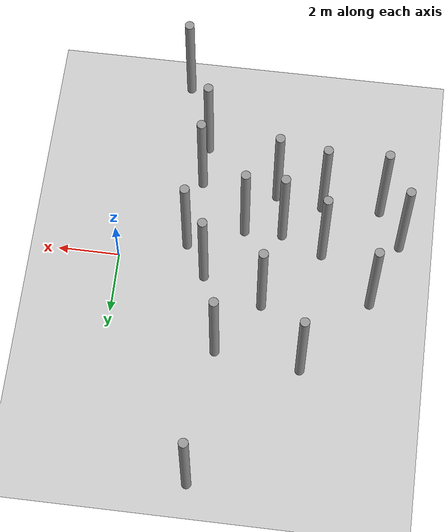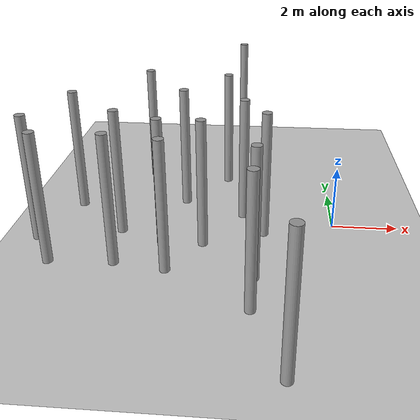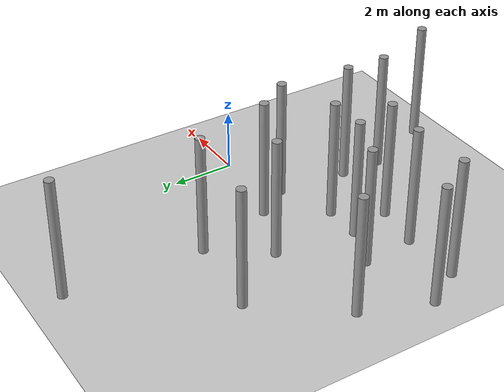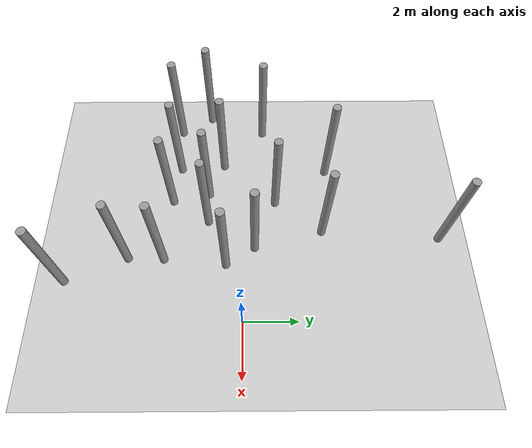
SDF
<sdf version="1.6">
 <world name="default">
  <model name="ground_plane">
   <static>1</static>
   <link name="link">
    <collision name="collision">
     <geometry><plane><normal>0 0 1</normal><size>100 100</size></plane></geometry>
     <surface><friction><ode><mu>100</mu><mu2>50</mu2></ode></friction></surface>
    </collision>
    <visual name="visual">
     <cast_shadows>0</cast_shadows>
     <geometry><plane><normal>0 0 1</normal><size>100 100</size></plane></geometry>
     <material>
      <script><uri>file://media/materials/scripts/gazebo.material</uri><name>Gazebo/Grey</name></script>
     </material>
    </visual>
   </link>
  </model>
  <model name="unit_cylinder">
   <link name="link">
    <inertial>
     <mass>1000</mass>
     <inertia><ixx>145.833</ixx><ixy>0</ixy><ixz>0</ixz><iyy>145.833</iyy><iyz>0</iyz><izz>125</izz></inertia>
    </inertial>
    <visual name="visual">
     <geometry><cylinder><radius>0.15</radius><length>4</length></cylinder></geometry>
     <material>
      <script><name>Gazebo/Grey</name><uri>file://media/materials/scripts/gazebo.material</uri></script>
      <shader type="pixel"><normal_map>__default__</normal_map></shader>
      <ambient>0.3 0.3 0.3 1</ambient>
      <diffuse>0.7 0.7 0.7 1</diffuse>
      <specular>0.01 0.01 0.01 1</specular>
      <emissive>0 0 0 1</emissive>
     </material>
    </visual>
    <collision name="collision">
     <geometry><cylinder><radius>0.15</radius><length>4</length></cylinder></geometry>
     <surface>
      <friction>
       <ode><mu>1</mu><mu2>1</mu2><fdir1>0 0 0</fdir1><slip1>0</slip1><slip2>0</slip2></ode>
       <torsional>
        <coefficient>1</coefficient>
        <patch_radius>0</patch_radius>
        <surface_radius>0</surface_radius>
        <use_patch_radius>1</use_patch_radius>
        <ode><slip>0</slip></ode>
       </torsional>
      </friction>
      <bounce><restitution_coefficient>0</restitution_coefficient><threshold>1e+06</threshold></bounce>
      <contact>
       <collide_without_contact>0</collide_without_contact>
       <collide_without_contact_bitmask>1</collide_without_contact_bitmask>
       <collide_bitmask>1</collide_bitmask>
       <ode>
        <soft_cfm>0</soft_cfm>
        <soft_erp>0.2</soft_erp>
        <kp>1e+13</kp>
        <kd>1</kd>
        <max_vel>0.01</max_vel>
        <min_depth>0</min_depth>
       </ode>
       <bullet>
        <split_impulse>1</split_impulse>
        <split_impulse_penetration_threshold>-0.01</split_impulse_penetration_threshold>
        <soft_cfm>0</soft_cfm>
        <soft_erp>0.2</soft_erp>
        <kp>1e+13</kp>
        <kd>1</kd>
       </bullet>
      </contact>
     </surface>
    </collision>
   </link>
   <static>0</static>
   <pose>-2.17183 -0.620816 1.99999 0 -0 0.001339</pose>
  </model>
  <model name="unit_cylinder_clone_4">
   <link name="link">
    <inertial>
     <mass>1000</mass>
     <inertia><ixx>145.833</ixx><ixy>0</ixy><ixz>0</ixz><iyy>145.833</iyy><iyz>0</iyz><izz>125</izz></inertia>
    </inertial>
    <visual name="visual">
     <geometry><cylinder><radius>0.15</radius><length>4</length></cylinder></geometry>
     <material>
      <script><name>Gazebo/Grey</name><uri>file://media/materials/scripts/gazebo.material</uri></script>
      <shader type="pixel"><normal_map>__default__</normal_map></shader>
      <ambient>0.3 0.3 0.3 1</ambient>
      <diffuse>0.7 0.7 0.7 1</diffuse>
      <specular>0.01 0.01 0.01 1</specular>
      <emissive>0 0 0 1</emissive>
     </material>
    </visual>
    <collision name="collision">
     <geometry><cylinder><radius>0.15</radius><length>4</length></cylinder></geometry>
     <surface>
      <friction>
       <ode><mu>1</mu><mu2>1</mu2><fdir1>0 0 0</fdir1><slip1>0</slip1><slip2>0</slip2></ode>
       <torsional>
        <coefficient>1</coefficient>
        <patch_radius>0</patch_radius>
        <surface_radius>0</surface_radius>
        <use_patch_radius>1</use_patch_radius>
        <ode><slip>0</slip></ode>
       </torsional>
      </friction>
      <bounce><restitution_coefficient>0</restitution_coefficient><threshold>1e+06</threshold></bounce>
      <contact>
       <collide_without_contact>0</collide_without_contact>
       <collide_without_contact_bitmask>1</collide_without_contact_bitmask>
       <collide_bitmask>1</collide_bitmask>
       <ode>
        <soft_cfm>0</soft_cfm>
        <soft_erp>0.2</soft_erp>
        <kp>1e+13</kp>
        <kd>1</kd>
        <max_vel>0.01</max_vel>
        <min_depth>0</min_depth>
       </ode>
       <bullet>
        <split_impulse>1</split_impulse>
        <split_impulse_penetration_threshold>-0.01</split_impulse_penetration_threshold>
        <soft_cfm>0</soft_cfm>
        <soft_erp>0.2</soft_erp>
        <kp>1e+13</kp>
        <kd>1</kd>
       </bullet>
      </contact>
     </surface>
    </collision>
   </link>
   <static>0</static>
   <pose>-3.98103 -1.32852 1.99999 0 -0 0.001494</pose>
  </model>
  <model name="unit_cylinder_clone_5">
   <link name="link">
    <inertial>
     <mass>1000</mass>
     <inertia><ixx>145.833</ixx><ixy>0</ixy><ixz>0</ixz><iyy>145.833</iyy><iyz>0</iyz><izz>125</izz></inertia>
    </inertial>
    <visual name="visual">
     <geometry><cylinder><radius>0.15</radius><length>4</length></cylinder></geometry>
     <material>
      <script><name>Gazebo/Grey</name><uri>file://media/materials/scripts/gazebo.material</uri></script>
      <shader type="pixel"><normal_map>__default__</normal_map></shader>
      <ambient>0.3 0.3 0.3 1</ambient>
      <diffuse>0.7 0.7 0.7 1</diffuse>
      <specular>0.01 0.01 0.01 1</specular>
      <emissive>0 0 0 1</emissive>
     </material>
    </visual>
    <collision name="collision">
     <geometry><cylinder><radius>0.15</radius><length>4</length></cylinder></geometry>
     <surface>
      <friction>
       <ode><mu>1</mu><mu2>1</mu2><fdir1>0 0 0</fdir1><slip1>0</slip1><slip2>0</slip2></ode>
       <torsional>
        <coefficient>1</coefficient>
        <patch_radius>0</patch_radius>
        <surface_radius>0</surface_radius>
        <use_patch_radius>1</use_patch_radius>
        <ode><slip>0</slip></ode>
       </torsional>
      </friction>
      <bounce><restitution_coefficient>0</restitution_coefficient><threshold>1e+06</threshold></bounce>
      <contact>
       <collide_without_contact>0</collide_without_contact>
       <collide_without_contact_bitmask>1</collide_without_contact_bitmask>
       <collide_bitmask>1</collide_bitmask>
       <ode>
        <soft_cfm>0</soft_cfm>
        <soft_erp>0.2</soft_erp>
        <kp>1e+13</kp>
        <kd>1</kd>
        <max_vel>0.01</max_vel>
        <min_depth>0</min_depth>
       </ode>
       <bullet>
        <split_impulse>1</split_impulse>
        <split_impulse_penetration_threshold>-0.01</split_impulse_penetration_threshold>
        <soft_cfm>0</soft_cfm>
        <soft_erp>0.2</soft_erp>
        <kp>1e+13</kp>
        <kd>1</kd>
       </bullet>
      </contact>
     </surface>
    </collision>
   </link>
   <static>0</static>
   <pose>-4.8156 1.25333 2 0 -0 0.00141</pose>
  </model>
  <model name="unit_cylinder_clone_6">
   <link name="link">
    <inertial>
     <mass>1000</mass>
     <inertia><ixx>145.833</ixx><ixy>0</ixy><ixz>0</ixz><iyy>145.833</iyy><iyz>0</iyz><izz>125</izz></inertia>
    </inertial>
    <visual name="visual">
     <geometry><cylinder><radius>0.15</radius><length>4</length></cylinder></geometry>
     <material>
      <script><name>Gazebo/Grey</name><uri>file://media/materials/scripts/gazebo.material</uri></script>
      <shader type="pixel"><normal_map>__default__</normal_map></shader>
      <ambient>0.3 0.3 0.3 1</ambient>
      <diffuse>0.7 0.7 0.7 1</diffuse>
      <specular>0.01 0.01 0.01 1</specular>
      <emissive>0 0 0 1</emissive>
     </material>
    </visual>
    <collision name="collision">
     <geometry><cylinder><radius>0.15</radius><length>4</length></cylinder></geometry>
     <surface>
      <friction>
       <ode><mu>1</mu><mu2>1</mu2><fdir1>0 0 0</fdir1><slip1>0</slip1><slip2>0</slip2></ode>
       <torsional>
        <coefficient>1</coefficient>
        <patch_radius>0</patch_radius>
        <surface_radius>0</surface_radius>
        <use_patch_radius>1</use_patch_radius>
        <ode><slip>0</slip></ode>
       </torsional>
      </friction>
      <bounce><restitution_coefficient>0</restitution_coefficient><threshold>1e+06</threshold></bounce>
      <contact>
       <collide_without_contact>0</collide_without_contact>
       <collide_without_contact_bitmask>1</collide_without_contact_bitmask>
       <collide_bitmask>1</collide_bitmask>
       <ode>
        <soft_cfm>0</soft_cfm>
        <soft_erp>0.2</soft_erp>
        <kp>1e+13</kp>
        <kd>1</kd>
        <max_vel>0.01</max_vel>
        <min_depth>0</min_depth>
       </ode>
       <bullet>
        <split_impulse>1</split_impulse>
        <split_impulse_penetration_threshold>-0.01</split_impulse_penetration_threshold>
        <soft_cfm>0</soft_cfm>
        <soft_erp>0.2</soft_erp>
        <kp>1e+13</kp>
        <kd>1</kd>
       </bullet>
      </contact>
     </surface>
    </collision>
   </link>
   <static>0</static>
   <pose>-3.52334 3.00007 1.99999 0 -0 0.001273</pose>
  </model>
  <model name="unit_cylinder_clone_7">
   <link name="link">
    <inertial>
     <mass>1000</mass>
     <inertia><ixx>145.833</ixx><ixy>0</ixy><ixz>0</ixz><iyy>145.833</iyy><iyz>0</iyz><izz>125</izz></inertia>
    </inertial>
    <visual name="visual">
     <geometry><cylinder><radius>0.15</radius><length>4</length></cylinder></geometry>
     <material>
      <script><name>Gazebo/Grey</name><uri>file://media/materials/scripts/gazebo.material</uri></script>
      <shader type="pixel"><normal_map>__default__</normal_map></shader>
      <ambient>0.3 0.3 0.3 1</ambient>
      <diffuse>0.7 0.7 0.7 1</diffuse>
      <specular>0.01 0.01 0.01 1</specular>
      <emissive>0 0 0 1</emissive>
     </material>
    </visual>
    <collision name="collision">
     <geometry><cylinder><radius>0.15</radius><length>4</length></cylinder></geometry>
     <surface>
      <friction>
       <ode><mu>1</mu><mu2>1</mu2><fdir1>0 0 0</fdir1><slip1>0</slip1><slip2>0</slip2></ode>
       <torsional>
        <coefficient>1</coefficient>
        <patch_radius>0</patch_radius>
        <surface_radius>0</surface_radius>
        <use_patch_radius>1</use_patch_radius>
        <ode><slip>0</slip></ode>
       </torsional>
      </friction>
      <bounce><restitution_coefficient>0</restitution_coefficient><threshold>1e+06</threshold></bounce>
      <contact>
       <collide_without_contact>0</collide_without_contact>
       <collide_without_contact_bitmask>1</collide_without_contact_bitmask>
       <collide_bitmask>1</collide_bitmask>
       <ode>
        <soft_cfm>0</soft_cfm>
        <soft_erp>0.2</soft_erp>
        <kp>1e+13</kp>
        <kd>1</kd>
        <max_vel>0.01</max_vel>
        <min_depth>0</min_depth>
       </ode>
       <bullet>
        <split_impulse>1</split_impulse>
        <split_impulse_penetration_threshold>-0.01</split_impulse_penetration_threshold>
        <soft_cfm>0</soft_cfm>
        <soft_erp>0.2</soft_erp>
        <kp>1e+13</kp>
        <kd>1</kd>
       </bullet>
      </contact>
     </surface>
    </collision>
   </link>
   <static>0</static>
   <pose>-2.40002 -2.93198 1.99999 0 -0 0.001374</pose>
  </model>
  <model name="unit_cylinder_clone_8">
   <link name="link">
    <inertial>
     <mass>1000</mass>
     <inertia><ixx>145.833</ixx><ixy>0</ixy><ixz>0</ixz><iyy>145.833</iyy><iyz>0</iyz><izz>125</izz></inertia>
    </inertial>
    <visual name="visual">
     <geometry><cylinder><radius>0.15</radius><length>4</length></cylinder></geometry>
     <material>
      <script><name>Gazebo/Grey</name><uri>file://media/materials/scripts/gazebo.material</uri></script>
      <shader type="pixel"><normal_map>__default__</normal_map></shader>
      <ambient>0.3 0.3 0.3 1</ambient>
      <diffuse>0.7 0.7 0.7 1</diffuse>
      <specular>0.01 0.01 0.01 1</specular>
      <emissive>0 0 0 1</emissive>
     </material>
    </visual>
    <collision name="collision">
     <geometry><cylinder><radius>0.15</radius><length>4</length></cylinder></geometry>
     <surface>
      <friction>
       <ode><mu>1</mu><mu2>1</mu2><fdir1>0 0 0</fdir1><slip1>0</slip1><slip2>0</slip2></ode>
       <torsional>
        <coefficient>1</coefficient>
        <patch_radius>0</patch_radius>
        <surface_radius>0</surface_radius>
        <use_patch_radius>1</use_patch_radius>
        <ode><slip>0</slip></ode>
       </torsional>
      </friction>
      <bounce><restitution_coefficient>0</restitution_coefficient><threshold>1e+06</threshold></bounce>
      <contact>
       <collide_without_contact>0</collide_without_contact>
       <collide_without_contact_bitmask>1</collide_without_contact_bitmask>
       <collide_bitmask>1</collide_bitmask>
       <ode>
        <soft_cfm>0</soft_cfm>
        <soft_erp>0.2</soft_erp>
        <kp>1e+13</kp>
        <kd>1</kd>
        <max_vel>0.01</max_vel>
        <min_depth>0</min_depth>
       </ode>
       <bullet>
        <split_impulse>1</split_impulse>
        <split_impulse_penetration_threshold>-0.01</split_impulse_penetration_threshold>
        <soft_cfm>0</soft_cfm>
        <soft_erp>0.2</soft_erp>
        <kp>1e+13</kp>
        <kd>1</kd>
       </bullet>
      </contact>
     </surface>
    </collision>
   </link>
   <static>0</static>
   <pose>-2.8562 0.444327 1.99999 0 -0 0.001326</pose>
  </model>
  <model name="unit_cylinder_clone_10">
   <link name="link">
    <inertial>
     <mass>1000</mass>
     <inertia><ixx>145.833</ixx><ixy>0</ixy><ixz>0</ixz><iyy>145.833</iyy><iyz>0</iyz><izz>125</izz></inertia>
    </inertial>
    <visual name="visual">
     <geometry><cylinder><radius>0.15</radius><length>4</length></cylinder></geometry>
     <material>
      <script><name>Gazebo/Grey</name><uri>file://media/materials/scripts/gazebo.material</uri></script>
      <shader type="pixel"><normal_map>__default__</normal_map></shader>
      <ambient>0.3 0.3 0.3 1</ambient>
      <diffuse>0.7 0.7 0.7 1</diffuse>
      <specular>0.01 0.01 0.01 1</specular>
      <emissive>0 0 0 1</emissive>
     </material>
    </visual>
    <collision name="collision">
     <geometry><cylinder><radius>0.15</radius><length>4</length></cylinder></geometry>
     <surface>
      <friction>
       <ode><mu>1</mu><mu2>1</mu2><fdir1>0 0 0</fdir1><slip1>0</slip1><slip2>0</slip2></ode>
       <torsional>
        <coefficient>1</coefficient>
        <patch_radius>0</patch_radius>
        <surface_radius>0</surface_radius>
        <use_patch_radius>1</use_patch_radius>
        <ode><slip>0</slip></ode>
       </torsional>
      </friction>
      <bounce><restitution_coefficient>0</restitution_coefficient><threshold>1e+06</threshold></bounce>
      <contact>
       <collide_without_contact>0</collide_without_contact>
       <collide_without_contact_bitmask>1</collide_without_contact_bitmask>
       <collide_bitmask>1</collide_bitmask>
       <ode>
        <soft_cfm>0</soft_cfm>
        <soft_erp>0.2</soft_erp>
        <kp>1e+13</kp>
        <kd>1</kd>
        <max_vel>0.01</max_vel>
        <min_depth>0</min_depth>
       </ode>
       <bullet>
        <split_impulse>1</split_impulse>
        <split_impulse_penetration_threshold>-0.01</split_impulse_penetration_threshold>
        <soft_cfm>0</soft_cfm>
        <soft_erp>0.2</soft_erp>
        <kp>1e+13</kp>
        <kd>1</kd>
       </bullet>
      </contact>
     </surface>
    </collision>
   </link>
   <static>0</static>
   <pose>-6.4237 -2.50135 1.99999 0 -0 0.001436</pose>
  </model>
  <model name="unit_cylinder_clone_11">
   <link name="link">
    <inertial>
     <mass>1000</mass>
     <inertia><ixx>145.833</ixx><ixy>0</ixy><ixz>0</ixz><iyy>145.833</iyy><iyz>0</iyz><izz>125</izz></inertia>
    </inertial>
    <visual name="visual">
     <geometry><cylinder><radius>0.15</radius><length>4</length></cylinder></geometry>
     <material>
      <script><name>Gazebo/Grey</name><uri>file://media/materials/scripts/gazebo.material</uri></script>
      <shader type="pixel"><normal_map>__default__</normal_map></shader>
      <ambient>0.3 0.3 0.3 1</ambient>
      <diffuse>0.7 0.7 0.7 1</diffuse>
      <specular>0.01 0.01 0.01 1</specular>
      <emissive>0 0 0 1</emissive>
     </material>
    </visual>
    <collision name="collision">
     <geometry><cylinder><radius>0.15</radius><length>4</length></cylinder></geometry>
     <surface>
      <friction>
       <ode><mu>1</mu><mu2>1</mu2><fdir1>0 0 0</fdir1><slip1>0</slip1><slip2>0</slip2></ode>
       <torsional>
        <coefficient>1</coefficient>
        <patch_radius>0</patch_radius>
        <surface_radius>0</surface_radius>
        <use_patch_radius>1</use_patch_radius>
        <ode><slip>0</slip></ode>
       </torsional>
      </friction>
      <bounce><restitution_coefficient>0</restitution_coefficient><threshold>1e+06</threshold></bounce>
      <contact>
       <collide_without_contact>0</collide_without_contact>
       <collide_without_contact_bitmask>1</collide_without_contact_bitmask>
       <collide_bitmask>1</collide_bitmask>
       <ode>
        <soft_cfm>0</soft_cfm>
        <soft_erp>0.2</soft_erp>
        <kp>1e+13</kp>
        <kd>1</kd>
        <max_vel>0.01</max_vel>
        <min_depth>0</min_depth>
       </ode>
       <bullet>
        <split_impulse>1</split_impulse>
        <split_impulse_penetration_threshold>-0.01</split_impulse_penetration_threshold>
        <soft_cfm>0</soft_cfm>
        <soft_erp>0.2</soft_erp>
        <kp>1e+13</kp>
        <kd>1</kd>
       </bullet>
      </contact>
     </surface>
    </collision>
   </link>
   <static>0</static>
   <pose>-4.89766 -2.73779 1.99999 0 -0 0.001436</pose>
  </model>
  <model name="unit_cylinder_clone_13">
   <link name="link">
    <inertial>
     <mass>1000</mass>
     <inertia><ixx>145.833</ixx><ixy>0</ixy><ixz>0</ixz><iyy>145.833</iyy><iyz>0</iyz><izz>125</izz></inertia>
    </inertial>
    <visual name="visual">
     <geometry><cylinder><radius>0.15</radius><length>4</length></cylinder></geometry>
     <material>
      <script><name>Gazebo/Grey</name><uri>file://media/materials/scripts/gazebo.material</uri></script>
      <shader type="pixel"><normal_map>__default__</normal_map></shader>
      <ambient>0.3 0.3 0.3 1</ambient>
      <diffuse>0.7 0.7 0.7 1</diffuse>
      <specular>0.01 0.01 0.01 1</specular>
      <emissive>0 0 0 1</emissive>
     </material>
    </visual>
    <collision name="collision">
     <geometry><cylinder><radius>0.15</radius><length>4</length></cylinder></geometry>
     <surface>
      <friction>
       <ode><mu>1</mu><mu2>1</mu2><fdir1>0 0 0</fdir1><slip1>0</slip1><slip2>0</slip2></ode>
       <torsional>
        <coefficient>1</coefficient>
        <patch_radius>0</patch_radius>
        <surface_radius>0</surface_radius>
        <use_patch_radius>1</use_patch_radius>
        <ode><slip>0</slip></ode>
       </torsional>
      </friction>
      <bounce><restitution_coefficient>0</restitution_coefficient><threshold>1e+06</threshold></bounce>
      <contact>
       <collide_without_contact>0</collide_without_contact>
       <collide_without_contact_bitmask>1</collide_without_contact_bitmask>
       <collide_bitmask>1</collide_bitmask>
       <ode>
        <soft_cfm>0</soft_cfm>
        <soft_erp>0.2</soft_erp>
        <kp>1e+13</kp>
        <kd>1</kd>
        <max_vel>0.01</max_vel>
        <min_depth>0</min_depth>
       </ode>
       <bullet>
        <split_impulse>1</split_impulse>
        <split_impulse_penetration_threshold>-0.01</split_impulse_penetration_threshold>
        <soft_cfm>0</soft_cfm>
        <soft_erp>0.2</soft_erp>
        <kp>1e+13</kp>
        <kd>1</kd>
       </bullet>
      </contact>
     </surface>
    </collision>
   </link>
   <static>0</static>
   <pose>-5.21834 -1.32988 2 0 -0 0.001384</pose>
  </model>
  <model name="unit_cylinder_clone_14">
   <link name="link">
    <inertial>
     <mass>1000</mass>
     <inertia><ixx>145.833</ixx><ixy>0</ixy><ixz>0</ixz><iyy>145.833</iyy><iyz>0</iyz><izz>125</izz></inertia>
    </inertial>
    <visual name="visual">
     <geometry><cylinder><radius>0.15</radius><length>4</length></cylinder></geometry>
     <material>
      <script><name>Gazebo/Grey</name><uri>file://media/materials/scripts/gazebo.material</uri></script>
      <shader type="pixel"><normal_map>__default__</normal_map></shader>
      <ambient>0.3 0.3 0.3 1</ambient>
      <diffuse>0.7 0.7 0.7 1</diffuse>
      <specular>0.01 0.01 0.01 1</specular>
      <emissive>0 0 0 1</emissive>
     </material>
    </visual>
    <collision name="collision">
     <geometry><cylinder><radius>0.15</radius><length>4</length></cylinder></geometry>
     <surface>
      <friction>
       <ode><mu>1</mu><mu2>1</mu2><fdir1>0 0 0</fdir1><slip1>0</slip1><slip2>0</slip2></ode>
       <torsional>
        <coefficient>1</coefficient>
        <patch_radius>0</patch_radius>
        <surface_radius>0</surface_radius>
        <use_patch_radius>1</use_patch_radius>
        <ode><slip>0</slip></ode>
       </torsional>
      </friction>
      <bounce><restitution_coefficient>0</restitution_coefficient><threshold>1e+06</threshold></bounce>
      <contact>
       <collide_without_contact>0</collide_without_contact>
       <collide_without_contact_bitmask>1</collide_without_contact_bitmask>
       <collide_bitmask>1</collide_bitmask>
       <ode>
        <soft_cfm>0</soft_cfm>
        <soft_erp>0.2</soft_erp>
        <kp>1e+13</kp>
        <kd>1</kd>
        <max_vel>0.01</max_vel>
        <min_depth>0</min_depth>
       </ode>
       <bullet>
        <split_impulse>1</split_impulse>
        <split_impulse_penetration_threshold>-0.01</split_impulse_penetration_threshold>
        <soft_cfm>0</soft_cfm>
        <soft_erp>0.2</soft_erp>
        <kp>1e+13</kp>
        <kd>1</kd>
       </bullet>
      </contact>
     </surface>
    </collision>
   </link>
   <static>0</static>
   <pose>-6.57296 -0.768324 1.99999 0 -0 0.001141</pose>
  </model>
  <model name="unit_cylinder_clone_15">
   <link name="link">
    <inertial>
     <mass>1000</mass>
     <inertia><ixx>145.833</ixx><ixy>0</ixy><ixz>0</ixz><iyy>145.833</iyy><iyz>0</iyz><izz>125</izz></inertia>
    </inertial>
    <visual name="visual">
     <geometry><cylinder><radius>0.15</radius><length>4</length></cylinder></geometry>
     <material>
      <script><name>Gazebo/Grey</name><uri>file://media/materials/scripts/gazebo.material</uri></script>
      <shader type="pixel"><normal_map>__default__</normal_map></shader>
      <ambient>0.3 0.3 0.3 1</ambient>
      <diffuse>0.7 0.7 0.7 1</diffuse>
      <specular>0.01 0.01 0.01 1</specular>
      <emissive>0 0 0 1</emissive>
     </material>
    </visual>
    <collision name="collision">
     <geometry><cylinder><radius>0.15</radius><length>4</length></cylinder></geometry>
     <surface>
      <friction>
       <ode><mu>1</mu><mu2>1</mu2><fdir1>0 0 0</fdir1><slip1>0</slip1><slip2>0</slip2></ode>
       <torsional>
        <coefficient>1</coefficient>
        <patch_radius>0</patch_radius>
        <surface_radius>0</surface_radius>
        <use_patch_radius>1</use_patch_radius>
        <ode><slip>0</slip></ode>
       </torsional>
      </friction>
      <bounce><restitution_coefficient>0</restitution_coefficient><threshold>1e+06</threshold></bounce>
      <contact>
       <collide_without_contact>0</collide_without_contact>
       <collide_without_contact_bitmask>1</collide_without_contact_bitmask>
       <collide_bitmask>1</collide_bitmask>
       <ode>
        <soft_cfm>0</soft_cfm>
        <soft_erp>0.2</soft_erp>
        <kp>1e+13</kp>
        <kd>1</kd>
        <max_vel>0.01</max_vel>
        <min_depth>0</min_depth>
       </ode>
       <bullet>
        <split_impulse>1</split_impulse>
        <split_impulse_penetration_threshold>-0.01</split_impulse_penetration_threshold>
        <soft_cfm>0</soft_cfm>
        <soft_erp>0.2</soft_erp>
        <kp>1e+13</kp>
        <kd>1</kd>
       </bullet>
      </contact>
     </surface>
    </collision>
   </link>
   <static>0</static>
   <pose>-8.32879 -2.56422 2 0 -0 0.001268</pose>
  </model>
  <model name="unit_cylinder_clone_16">
   <link name="link">
    <inertial>
     <mass>1000</mass>
     <inertia><ixx>145.833</ixx><ixy>0</ixy><ixz>0</ixz><iyy>145.833</iyy><iyz>0</iyz><izz>125</izz></inertia>
    </inertial>
    <visual name="visual">
     <geometry><cylinder><radius>0.15</radius><length>4</length></cylinder></geometry>
     <material>
      <script><name>Gazebo/Grey</name><uri>file://media/materials/scripts/gazebo.material</uri></script>
      <shader type="pixel"><normal_map>__default__</normal_map></shader>
      <ambient>0.3 0.3 0.3 1</ambient>
      <diffuse>0.7 0.7 0.7 1</diffuse>
      <specular>0.01 0.01 0.01 1</specular>
      <emissive>0 0 0 1</emissive>
     </material>
    </visual>
    <collision name="collision">
     <geometry><cylinder><radius>0.15</radius><length>4</length></cylinder></geometry>
     <surface>
      <friction>
       <ode><mu>1</mu><mu2>1</mu2><fdir1>0 0 0</fdir1><slip1>0</slip1><slip2>0</slip2></ode>
       <torsional>
        <coefficient>1</coefficient>
        <patch_radius>0</patch_radius>
        <surface_radius>0</surface_radius>
        <use_patch_radius>1</use_patch_radius>
        <ode><slip>0</slip></ode>
       </torsional>
      </friction>
      <bounce><restitution_coefficient>0</restitution_coefficient><threshold>1e+06</threshold></bounce>
      <contact>
       <collide_without_contact>0</collide_without_contact>
       <collide_without_contact_bitmask>1</collide_without_contact_bitmask>
       <collide_bitmask>1</collide_bitmask>
       <ode>
        <soft_cfm>0</soft_cfm>
        <soft_erp>0.2</soft_erp>
        <kp>1e+13</kp>
        <kd>1</kd>
        <max_vel>0.01</max_vel>
        <min_depth>0</min_depth>
       </ode>
       <bullet>
        <split_impulse>1</split_impulse>
        <split_impulse_penetration_threshold>-0.01</split_impulse_penetration_threshold>
        <soft_cfm>0</soft_cfm>
        <soft_erp>0.2</soft_erp>
        <kp>1e+13</kp>
        <kd>1</kd>
       </bullet>
      </contact>
     </surface>
    </collision>
   </link>
   <static>0</static>
   <pose>-9.06637 -1.36031 2 0 -0 0.001316</pose>
  </model>
  <model name="unit_cylinder_clone_17">
   <link name="link">
    <inertial>
     <mass>1000</mass>
     <inertia><ixx>145.833</ixx><ixy>0</ixy><ixz>0</ixz><iyy>145.833</iyy><iyz>0</iyz><izz>125</izz></inertia>
    </inertial>
    <visual name="visual">
     <geometry><cylinder><radius>0.15</radius><length>4</length></cylinder></geometry>
     <material>
      <script><name>Gazebo/Grey</name><uri>file://media/materials/scripts/gazebo.material</uri></script>
      <shader type="pixel"><normal_map>__default__</normal_map></shader>
      <ambient>0.3 0.3 0.3 1</ambient>
      <diffuse>0.7 0.7 0.7 1</diffuse>
      <specular>0.01 0.01 0.01 1</specular>
      <emissive>0 0 0 1</emissive>
     </material>
    </visual>
    <collision name="collision">
     <geometry><cylinder><radius>0.15</radius><length>4</length></cylinder></geometry>
     <surface>
      <friction>
       <ode><mu>1</mu><mu2>1</mu2><fdir1>0 0 0</fdir1><slip1>0</slip1><slip2>0</slip2></ode>
       <torsional>
        <coefficient>1</coefficient>
        <patch_radius>0</patch_radius>
        <surface_radius>0</surface_radius>
        <use_patch_radius>1</use_patch_radius>
        <ode><slip>0</slip></ode>
       </torsional>
      </friction>
      <bounce><restitution_coefficient>0</restitution_coefficient><threshold>1e+06</threshold></bounce>
      <contact>
       <collide_without_contact>0</collide_without_contact>
       <collide_without_contact_bitmask>1</collide_without_contact_bitmask>
       <collide_bitmask>1</collide_bitmask>
       <ode>
        <soft_cfm>0</soft_cfm>
        <soft_erp>0.2</soft_erp>
        <kp>1e+13</kp>
        <kd>1</kd>
        <max_vel>0.01</max_vel>
        <min_depth>0</min_depth>
       </ode>
       <bullet>
        <split_impulse>1</split_impulse>
        <split_impulse_penetration_threshold>-0.01</split_impulse_penetration_threshold>
        <soft_cfm>0</soft_cfm>
        <soft_erp>0.2</soft_erp>
        <kp>1e+13</kp>
        <kd>1</kd>
       </bullet>
      </contact>
     </surface>
    </collision>
   </link>
   <static>0</static>
   <pose>-8.26984 0.791577 1.99999 0 -0 0.001328</pose>
  </model>
  <model name="unit_cylinder_clone_19">
   <link name="link">
    <inertial>
     <mass>1000</mass>
     <inertia><ixx>145.833</ixx><ixy>0</ixy><ixz>0</ixz><iyy>145.833</iyy><iyz>0</iyz><izz>125</izz></inertia>
    </inertial>
    <visual name="visual">
     <geometry><cylinder><radius>0.15</radius><length>4</length></cylinder></geometry>
     <material>
      <script><name>Gazebo/Grey</name><uri>file://media/materials/scripts/gazebo.material</uri></script>
      <shader type="pixel"><normal_map>__default__</normal_map></shader>
      <ambient>0.3 0.3 0.3 1</ambient>
      <diffuse>0.7 0.7 0.7 1</diffuse>
      <specular>0.01 0.01 0.01 1</specular>
      <emissive>0 0 0 1</emissive>
     </material>
    </visual>
    <collision name="collision">
     <geometry><cylinder><radius>0.15</radius><length>4</length></cylinder></geometry>
     <surface>
      <friction>
       <ode><mu>1</mu><mu2>1</mu2><fdir1>0 0 0</fdir1><slip1>0</slip1><slip2>0</slip2></ode>
       <torsional>
        <coefficient>1</coefficient>
        <patch_radius>0</patch_radius>
        <surface_radius>0</surface_radius>
        <use_patch_radius>1</use_patch_radius>
        <ode><slip>0</slip></ode>
       </torsional>
      </friction>
      <bounce><restitution_coefficient>0</restitution_coefficient><threshold>1e+06</threshold></bounce>
      <contact>
       <collide_without_contact>0</collide_without_contact>
       <collide_without_contact_bitmask>1</collide_without_contact_bitmask>
       <collide_bitmask>1</collide_bitmask>
       <ode>
        <soft_cfm>0</soft_cfm>
        <soft_erp>0.2</soft_erp>
        <kp>1e+13</kp>
        <kd>1</kd>
        <max_vel>0.01</max_vel>
        <min_depth>0</min_depth>
       </ode>
       <bullet>
        <split_impulse>1</split_impulse>
        <split_impulse_penetration_threshold>-0.01</split_impulse_penetration_threshold>
        <soft_cfm>0</soft_cfm>
        <soft_erp>0.2</soft_erp>
        <kp>1e+13</kp>
        <kd>1</kd>
       </bullet>
      </contact>
     </surface>
    </collision>
   </link>
   <static>0</static>
   <pose>-3.20769 7.43034 1.99999 0 -0 0.000896</pose>
  </model>
  <model name="unit_cylinder_clone_39">
   <link name="link">
    <inertial>
     <mass>1000</mass>
     <inertia><ixx>145.833</ixx><ixy>0</ixy><ixz>0</ixz><iyy>145.833</iyy><iyz>0</iyz><izz>125</izz></inertia>
    </inertial>
    <visual name="visual">
     <geometry><cylinder><radius>0.15</radius><length>4</length></cylinder></geometry>
     <material>
      <script><name>Gazebo/Grey</name><uri>file://media/materials/scripts/gazebo.material</uri></script>
      <shader type="pixel"><normal_map>__default__</normal_map></shader>
      <ambient>0.3 0.3 0.3 1</ambient>
      <diffuse>0.7 0.7 0.7 1</diffuse>
      <specular>0.01 0.01 0.01 1</specular>
      <emissive>0 0 0 1</emissive>
     </material>
    </visual>
    <collision name="collision">
     <geometry><cylinder><radius>0.15</radius><length>4</length></cylinder></geometry>
     <surface>
      <friction>
       <ode><mu>1</mu><mu2>1</mu2><fdir1>0 0 0</fdir1><slip1>0</slip1><slip2>0</slip2></ode>
       <torsional>
        <coefficient>1</coefficient>
        <patch_radius>0</patch_radius>
        <surface_radius>0</surface_radius>
        <use_patch_radius>1</use_patch_radius>
        <ode><slip>0</slip></ode>
       </torsional>
      </friction>
      <bounce><restitution_coefficient>0</restitution_coefficient><threshold>1e+06</threshold></bounce>
      <contact>
       <collide_without_contact>0</collide_without_contact>
       <collide_without_contact_bitmask>1</collide_without_contact_bitmask>
       <collide_bitmask>1</collide_bitmask>
       <ode>
        <soft_cfm>0</soft_cfm>
        <soft_erp>0.2</soft_erp>
        <kp>1e+13</kp>
        <kd>1</kd>
        <max_vel>0.01</max_vel>
        <min_depth>0</min_depth>
       </ode>
       <bullet>
        <split_impulse>1</split_impulse>
        <split_impulse_penetration_threshold>-0.01</split_impulse_penetration_threshold>
        <soft_cfm>0</soft_cfm>
        <soft_erp>0.2</soft_erp>
        <kp>1e+13</kp>
        <kd>1</kd>
       </bullet>
      </contact>
     </surface>
    </collision>
   </link>
   <static>0</static>
   <pose>-1.55224 -6.51056 2 0 -0 0.001289</pose>
  </model>
  <model name="unit_cylinder_clone_43">
   <link name="link">
    <inertial>
     <mass>1000</mass>
     <inertia><ixx>145.833</ixx><ixy>0</ixy><ixz>0</ixz><iyy>145.833</iyy><iyz>0</iyz><izz>125</izz></inertia>
    </inertial>
    <visual name="visual">
     <geometry><cylinder><radius>0.15</radius><length>4</length></cylinder></geometry>
     <material>
      <script><name>Gazebo/Grey</name><uri>file://media/materials/scripts/gazebo.material</uri></script>
      <shader type="pixel"><normal_map>__default__</normal_map></shader>
      <ambient>0.3 0.3 0.3 1</ambient>
      <diffuse>0.7 0.7 0.7 1</diffuse>
      <specular>0.01 0.01 0.01 1</specular>
      <emissive>0 0 0 1</emissive>
     </material>
    </visual>
    <collision name="collision">
     <geometry><cylinder><radius>0.15</radius><length>4</length></cylinder></geometry>
     <surface>
      <friction>
       <ode><mu>1</mu><mu2>1</mu2><fdir1>0 0 0</fdir1><slip1>0</slip1><slip2>0</slip2></ode>
       <torsional>
        <coefficient>1</coefficient>
        <patch_radius>0</patch_radius>
        <surface_radius>0</surface_radius>
        <use_patch_radius>1</use_patch_radius>
        <ode><slip>0</slip></ode>
       </torsional>
      </friction>
      <bounce><restitution_coefficient>0</restitution_coefficient><threshold>1e+06</threshold></bounce>
      <contact>
       <collide_without_contact>0</collide_without_contact>
       <collide_without_contact_bitmask>1</collide_without_contact_bitmask>
       <collide_bitmask>1</collide_bitmask>
       <ode>
        <soft_cfm>0</soft_cfm>
        <soft_erp>0.2</soft_erp>
        <kp>1e+13</kp>
        <kd>1</kd>
        <max_vel>0.01</max_vel>
        <min_depth>0</min_depth>
       </ode>
       <bullet>
        <split_impulse>1</split_impulse>
        <split_impulse_penetration_threshold>-0.01</split_impulse_penetration_threshold>
        <soft_cfm>0</soft_cfm>
        <soft_erp>0.2</soft_erp>
        <kp>1e+13</kp>
        <kd>1</kd>
       </bullet>
      </contact>
     </surface>
    </collision>
   </link>
   <static>0</static>
   <pose>-2.4425 -4.26854 1.99999 0 -0 0.000928</pose>
  </model>
  <model name="unit_cylinder_clone_8_clone">
   <link name="link">
    <inertial>
     <mass>1000</mass>
     <inertia><ixx>145.833</ixx><ixy>0</ixy><ixz>0</ixz><iyy>145.833</iyy><iyz>0</iyz><izz>125</izz></inertia>
    </inertial>
    <visual name="visual">
     <geometry><cylinder><radius>0.15</radius><length>4</length></cylinder></geometry>
     <material>
      <script><name>Gazebo/Grey</name><uri>file://media/materials/scripts/gazebo.material</uri></script>
      <shader type="pixel"><normal_map>__default__</normal_map></shader>
      <ambient>0.3 0.3 0.3 1</ambient>
      <diffuse>0.7 0.7 0.7 1</diffuse>
      <specular>0.01 0.01 0.01 1</specular>
      <emissive>0 0 0 1</emissive>
     </material>
    </visual>
    <collision name="collision">
     <geometry><cylinder><radius>0.15</radius><length>4</length></cylinder></geometry>
     <surface>
      <friction>
       <ode><mu>1</mu><mu2>1</mu2><fdir1>0 0 0</fdir1><slip1>0</slip1><slip2>0</slip2></ode>
       <torsional>
        <coefficient>1</coefficient>
        <patch_radius>0</patch_radius>
        <surface_radius>0</surface_radius>
        <use_patch_radius>1</use_patch_radius>
        <ode><slip>0</slip></ode>
       </torsional>
      </friction>
      <bounce><restitution_coefficient>0</restitution_coefficient><threshold>1e+06</threshold></bounce>
      <contact>
       <collide_without_contact>0</collide_without_contact>
       <collide_without_contact_bitmask>1</collide_without_contact_bitmask>
       <collide_bitmask>1</collide_bitmask>
       <ode>
        <soft_cfm>0</soft_cfm>
        <soft_erp>0.2</soft_erp>
        <kp>1e+13</kp>
        <kd>1</kd>
        <max_vel>0.01</max_vel>
        <min_depth>0</min_depth>
       </ode>
       <bullet>
        <split_impulse>1</split_impulse>
        <split_impulse_penetration_threshold>-0.01</split_impulse_penetration_threshold>
        <soft_cfm>0</soft_cfm>
        <soft_erp>0.2</soft_erp>
        <kp>1e+13</kp>
        <kd>1</kd>
       </bullet>
      </contact>
     </surface>
    </collision>
   </link>
   <static>0</static>
   <pose>-6.27261 3.31108 1.99999 0 -0 0.001436</pose>
  </model>
 </world>
</sdf>
